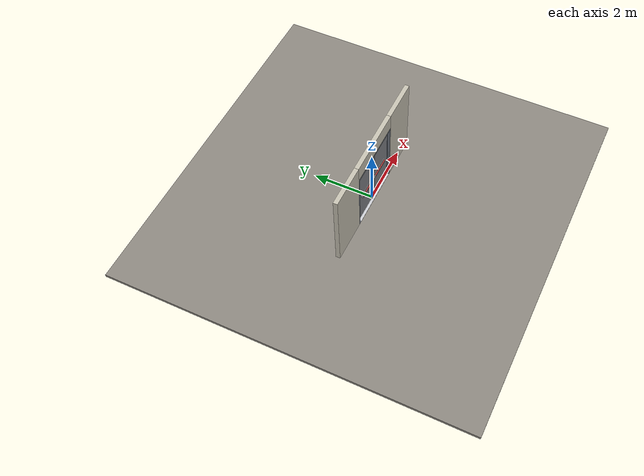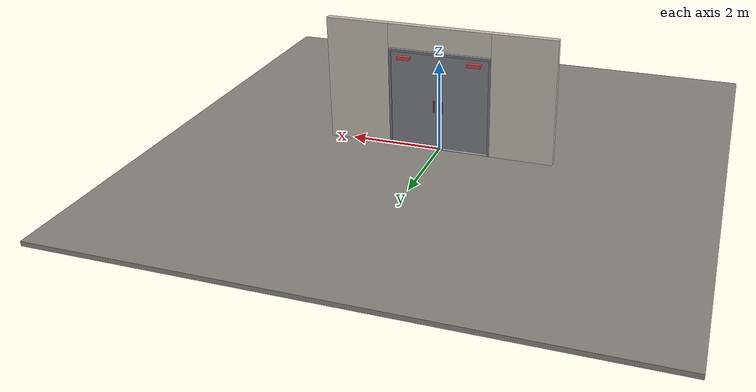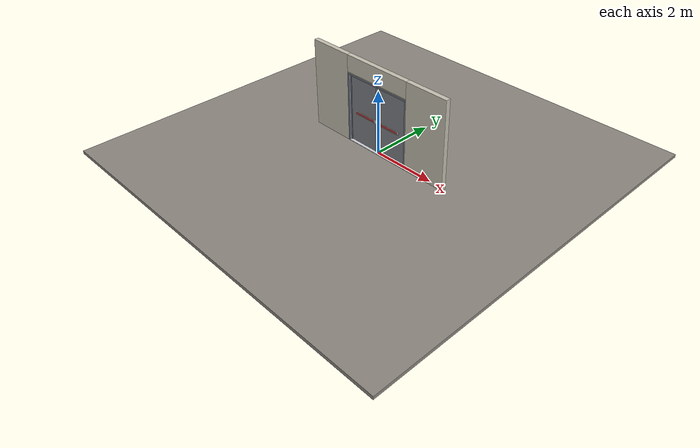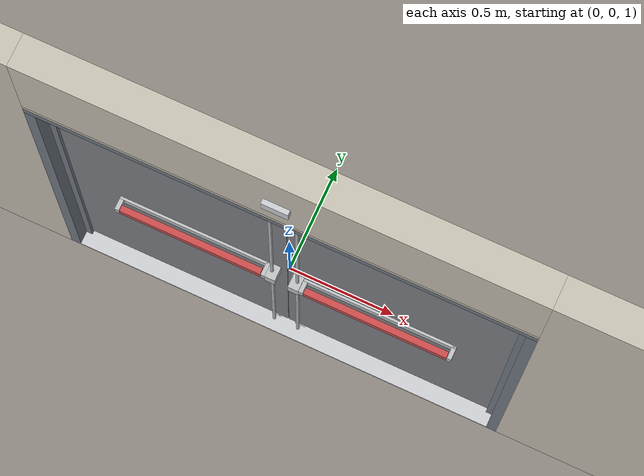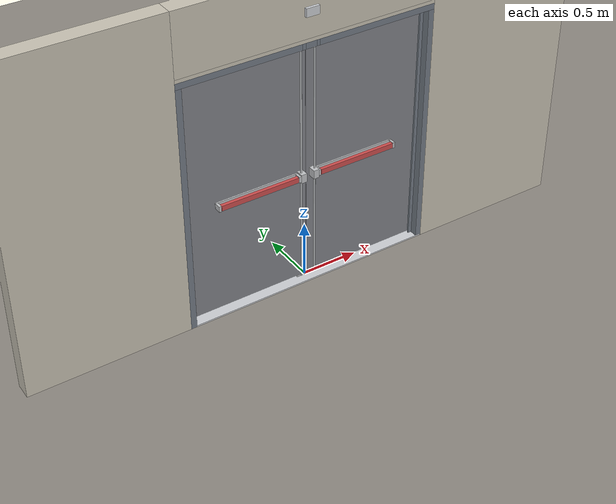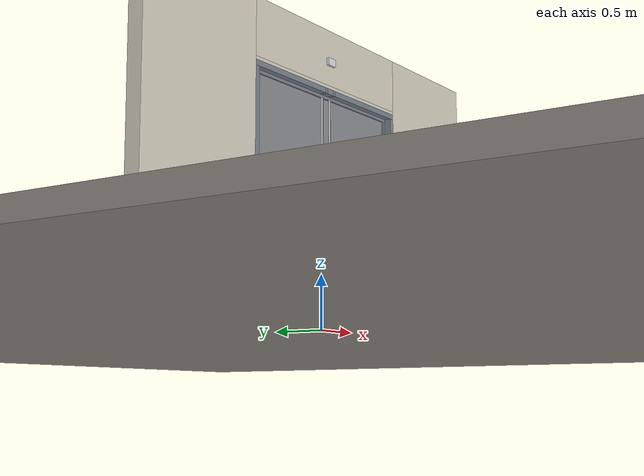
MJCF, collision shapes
<?xml version="1.0" ?>
<mujoco model="db0562_swing_double_full">
  <compiler angle="radian" meshdir="../../hardware" texturedir="../../textures" autolimits="true" inertiafromgeom="false"/>
  <option timestep="0.002" integrator="implicitfast" cone="elliptic" impratio="10" noslip_iterations="3">
    <flag multiccd="enable"/>
  </option>
  <size memory="16M"/>
  <default>
    <geom condim="4" solref="0.005 1" solimp="0.95 0.99 0.001"/>
    <joint solreflimit="0.005 1" solimplimit="0.95 0.99 0.001"/>
    <tendon solreflimit="0.005 1"/>
    <equality solref="0.002 1"/>
  </default>
  <visual>
    <headlight ambient="0.4 0.4 0.4" diffuse="0.7 0.7 0.7" specular="0.2 0.2 0.2"/>
    <quality shadowsize="4096"/>
    <map znear="0.01" zfar="60"/>
  </visual>
  <asset>
    <mesh name="closer_body_fdc4667657" file="closer_body_fdc4667657.obj"/>
    <mesh name="exit_sign_a6449bfa2c" file="exit_sign_a6449bfa2c.obj"/>
    <mesh name="hinge_e22b26c0c1" file="hinge_e22b26c0c1.obj"/>
    <mesh name="hinge_jamb_e1d088f8dc" file="hinge_jamb_e1d088f8dc.obj"/>
    <mesh name="pull_f8d79d6331" file="pull_f8d79d6331.obj"/>
    <mesh name="touchbar_pad_53c3bea3f4" file="touchbar_pad_53c3bea3f4.obj"/>
    <material name="mat_floor" rgba="0.55 0.53 0.5 1" specular="0.2" shininess="0.15" reflectance="0"/>
    <material name="mat_wall" rgba="0.78 0.76 0.7 1" specular="0.2" shininess="0.1" reflectance="0"/>
    <material name="mat_leaf_a" rgba="0.5 0.51 0.53 1" specular="0.23" shininess="0.53" reflectance="0.02"/>
    <material name="mat_hinge" rgba="0.65 0.66 0.68 1" specular="0.74" shininess="0.5" reflectance="0.36"/>
    <material name="mat_op_stainless" rgba="0.75 0.76 0.77 1" specular="0.8" shininess="0.65" reflectance="0.4"/>
    <material name="mat_bolt" rgba="0.75 0.76 0.77 1" specular="0.8" shininess="0.65" reflectance="0.4"/>
    <material name="mat_closer" rgba="0.22 0.17 0.13 1" specular="0.8" shininess="0.6" reflectance="0.4"/>
    <material name="mat_exit_sign" rgba="0.85 0.1 0.1 1" specular="0.2" shininess="0.6" reflectance="0"/>
    <material name="mat_sign_bracket" rgba="0.8 0.81 0.83 1" specular="0.8" shininess="0.6" reflectance="0.4"/>
    <material name="mat_leaf_b" rgba="0.5 0.51 0.53 1" specular="0.23" shininess="0.53" reflectance="0.02"/>
    <material name="mat_frame" rgba="0.45 0.48 0.52 1" specular="0.32" shininess="0.6" reflectance="0.08"/>
    <material name="mat_threshold" rgba="0.8 0.81 0.83 1" specular="0.8" shininess="0.6" reflectance="0.4"/>
    <texture name="skybox" type="skybox" builtin="gradient" rgb1="0.6 0.7 0.85" rgb2="0.9 0.92 0.95" width="256" height="256"/>
  </asset>
  <worldbody>
    <light name="sun" pos="1.5 -2.5 4" dir="-0.3 0.5 -0.8" directional="true" diffuse="0.8 0.8 0.8" specular="0.3 0.3 0.3" castshadow="true"/>
    <light name="fill" pos="-1.5 2.5 3" dir="0.3 -0.5 -0.7" directional="true" diffuse="0.35 0.35 0.4" castshadow="false"/>
    <camera name="robot_view" pos="0 -2.668312 1.812087" xyaxes="1 0 0 0 0.26963 0.962964" fovy="52"/>
    <camera name="far_view" pos="0 2.607312 1.812087" xyaxes="-1 0 0 0 -0.26963 0.962964" fovy="52"/>
    <camera name="iso" pos="-2.004737 -2.246262 2.234138" xyaxes="0.741536 -0.670913 0 0.242917 0.268487 0.932151" fovy="46"/>
    <camera name="detail_handle" pos="0.0885 -0.703 1.296" xyaxes="0.97561 0.219512 0 -0.070934 0.315262 0.94635" fovy="38"/>
    <geom name="floor" type="box" size="6 6 0.05" pos="0 0 -0.05" material="mat_floor" group="0" contype="1" conaffinity="1" friction="0.8 0.005 0.0001" density="2400"/>
    <geom name="wall_left" type="box" size="0.68925 0.0725 1.3735" pos="-1.81075 -0.0305 1.3735" material="mat_wall" group="0" contype="1" conaffinity="1" friction="0.6 0.005 0.0001" density="800"/>
    <geom name="wall_right" type="box" size="0.68925 0.0725 1.3735" pos="1.81075 -0.0305 1.3735" material="mat_wall" group="0" contype="1" conaffinity="1" friction="0.6 0.005 0.0001" density="800"/>
    <geom name="wall_header" type="box" size="1.1215 0.0725 0.26" pos="0 -0.0305 2.487" material="mat_wall" group="0" contype="1" conaffinity="1" friction="0.6 0.005 0.0001" density="800"/>
    <geom name="hinge_0_jamb" type="mesh" mesh="hinge_jamb_e1d088f8dc" pos="-1.0685 0.029 0.279" quat="0 1 0 0" material="mat_hinge" group="1" contype="0" conaffinity="0" density="7850"/>
    <geom name="hinge_1_jamb" type="mesh" mesh="hinge_jamb_e1d088f8dc" pos="-1.0685 0.029 1.086" quat="0 1 0 0" material="mat_hinge" group="1" contype="0" conaffinity="0" density="7850"/>
    <geom name="hinge_2_jamb" type="mesh" mesh="hinge_jamb_e1d088f8dc" pos="-1.0685 0.029 1.963" quat="0 1 0 0" material="mat_hinge" group="1" contype="0" conaffinity="0" density="7850"/>
    <geom name="leaf_a_bottom_strike_plate" type="box" size="0.0255 0.0255 0.00075" pos="-0.0615 0 0.01375" material="mat_bolt" group="0" contype="1" conaffinity="1" friction="0.6 0.005 0.0001" density="7850"/>
    <geom name="leaf_a_bottom_strike_p" type="box" size="0.0215 0.004 0.00575" pos="-0.0615 0.0145 0.02025" material="mat_bolt" group="0" contype="1" conaffinity="1" friction="0.6 0.005 0.0001" density="7850"/>
    <geom name="leaf_a_bottom_strike_n" type="box" size="0.0215 0.004 0.00575" pos="-0.0615 -0.0145 0.02025" material="mat_bolt" group="0" contype="1" conaffinity="1" friction="0.6 0.005 0.0001" density="7850"/>
    <geom name="leaf_a_bottom_strike_e" type="box" size="0.004 0.0215 0.00575" pos="-0.047 0 0.02025" material="mat_bolt" group="0" contype="1" conaffinity="1" friction="0.6 0.005 0.0001" density="7850"/>
    <geom name="exit_sign" type="mesh" mesh="exit_sign_a6449bfa2c" pos="0 -0.15 2.447" material="mat_exit_sign" group="2" contype="0" conaffinity="0" density="500"/>
    <geom name="exit_sign_bracket" type="box" size="0.05775 0.0115 0.035" pos="0 -0.114 2.447" material="mat_sign_bracket" group="2" contype="0" conaffinity="0" density="7850"/>
    <geom name="hinge_0_jamb_2" type="mesh" mesh="hinge_jamb_e1d088f8dc" pos="1.0685 0.029 0.279" quat="0 0 0 1" material="mat_hinge" group="1" contype="0" conaffinity="0" density="7850"/>
    <geom name="hinge_1_jamb_2" type="mesh" mesh="hinge_jamb_e1d088f8dc" pos="1.0685 0.029 1.086" quat="0 0 0 1" material="mat_hinge" group="1" contype="0" conaffinity="0" density="7850"/>
    <geom name="hinge_2_jamb_2" type="mesh" mesh="hinge_jamb_e1d088f8dc" pos="1.0685 0.029 1.963" quat="0 0 0 1" material="mat_hinge" group="1" contype="0" conaffinity="0" density="7850"/>
    <geom name="leaf_b_bottom_strike_plate" type="box" size="0.0255 0.0255 0.00075" pos="0.0615 0 0.01375" material="mat_bolt" group="0" contype="1" conaffinity="1" friction="0.6 0.005 0.0001" density="7850"/>
    <geom name="leaf_b_bottom_strike_p" type="box" size="0.0215 0.004 0.00575" pos="0.0615 0.0145 0.02025" material="mat_bolt" group="0" contype="1" conaffinity="1" friction="0.6 0.005 0.0001" density="7850"/>
    <geom name="leaf_b_bottom_strike_n" type="box" size="0.0215 0.004 0.00575" pos="0.0615 -0.0145 0.02025" material="mat_bolt" group="0" contype="1" conaffinity="1" friction="0.6 0.005 0.0001" density="7850"/>
    <geom name="leaf_b_bottom_strike_e" type="box" size="0.004 0.0215 0.00575" pos="0.047 0 0.02025" material="mat_bolt" group="0" contype="1" conaffinity="1" friction="0.6 0.005 0.0001" density="7850"/>
    <geom name="jamb_l" type="box" size="0.025 0.0725 1.0735" pos="-1.0965 -0.0305 1.0735" material="mat_frame" group="0" contype="1" conaffinity="1" friction="0.6 0.005 0.0001" density="300"/>
    <geom name="jamb_r" type="box" size="0.025 0.0725 1.0735" pos="1.0965 -0.0305 1.0735" material="mat_frame" group="0" contype="1" conaffinity="1" friction="0.6 0.005 0.0001" density="300"/>
    <geom name="jamb_head_pwall_-61_n" type="box" size="0.0135 0.046 0.025" pos="-0.0615 -0.057 2.172" material="mat_frame" group="0" contype="1" conaffinity="1" friction="0.6 0.005 0.0001" density="300"/>
    <geom name="jamb_head_pwall_-61_p" type="box" size="0.0135 0.0155 0.025" pos="-0.0615 0.0265 2.172" material="mat_frame" group="0" contype="1" conaffinity="1" friction="0.6 0.005 0.0001" density="300"/>
    <geom name="jamb_head_pback_-61" type="box" size="0.0135 0.011 0.0135" pos="-0.0615 0 2.1835" material="mat_frame" group="0" contype="1" conaffinity="1" friction="0.6 0.005 0.0001" density="300"/>
    <geom name="jamb_head_pwall_61_n" type="box" size="0.0135 0.046 0.025" pos="0.0615 -0.057 2.172" material="mat_frame" group="0" contype="1" conaffinity="1" friction="0.6 0.005 0.0001" density="300"/>
    <geom name="jamb_head_pwall_61_p" type="box" size="0.0135 0.0155 0.025" pos="0.0615 0.0265 2.172" material="mat_frame" group="0" contype="1" conaffinity="1" friction="0.6 0.005 0.0001" density="300"/>
    <geom name="jamb_head_pback_61" type="box" size="0.0135 0.011 0.0135" pos="0.0615 0 2.1835" material="mat_frame" group="0" contype="1" conaffinity="1" friction="0.6 0.005 0.0001" density="300"/>
    <geom name="jamb_head_0" type="box" size="0.52325 0.0725 0.025" pos="-0.59825 -0.0305 2.172" material="mat_frame" group="0" contype="1" conaffinity="1" friction="0.6 0.005 0.0001" density="300"/>
    <geom name="jamb_head_1" type="box" size="0.048 0.0725 0.025" pos="0 -0.0305 2.172" material="mat_frame" group="0" contype="1" conaffinity="1" friction="0.6 0.005 0.0001" density="300"/>
    <geom name="jamb_head_2" type="box" size="0.52325 0.0725 0.025" pos="0.59825 -0.0305 2.172" material="mat_frame" group="0" contype="1" conaffinity="1" friction="0.6 0.005 0.0001" density="300"/>
    <geom name="head_stud" type="box" size="1.1215 0.0725 0.015" pos="0 -0.0305 2.212" material="mat_wall" group="0" contype="1" conaffinity="1" friction="0.6 0.005 0.0001" density="500"/>
    <geom name="stop_l" type="box" size="0.015 0.008 1.0735" pos="-1.0565 -0.0305 1.0735" material="mat_frame" group="0" contype="1" conaffinity="1" friction="0.6 0.005 0.0001" density="300"/>
    <geom name="stop_r" type="box" size="0.015 0.008 1.0735" pos="1.0565 -0.0305 1.0735" material="mat_frame" group="0" contype="1" conaffinity="1" friction="0.6 0.005 0.0001" density="300"/>
    <geom name="stop_head" type="box" size="1.0715 0.008 0.015" pos="0 -0.0305 2.132" material="mat_frame" group="0" contype="1" conaffinity="1" friction="0.6 0.005 0.0001" density="300"/>
    <geom name="threshold" type="box" size="1.1215 0.0725 0.0065" pos="0 -0.0305 0.0065" material="mat_threshold" group="0" contype="1" conaffinity="1" friction="0.5 0.005 0.0001" density="2700"/>
    <site name="approach_point" pos="0 -1.5 0" quat="1 0 0 0" size="0.05" rgba="0.2 0.9 0.2 0.5" group="4"/>
    <site name="goal_point" pos="0 1.5 0" quat="1 0 0 0" size="0.05" rgba="0.2 0.9 0.2 0.5" group="4"/>
    <site name="door_plane_center" pos="0 0 1.0735" quat="1 0 0 0" size="0.02" rgba="0.2 0.9 0.2 0.5" group="4"/>
    <site name="approach_point_2" pos="0 -1.5 0" quat="1 0 0 0" size="0.05" rgba="0.2 0.9 0.2 0.5" group="4"/>
    <site name="goal_point_2" pos="0 1.5 0" quat="1 0 0 0" size="0.05" rgba="0.2 0.9 0.2 0.5" group="4"/>
    <site name="door_plane_center_2" pos="0 0 1.0735" quat="1 0 0 0" size="0.02" rgba="0.2 0.9 0.2 0.5" group="4"/>
    <site name="approach_point_3" pos="0 -1.5 0" quat="1 0 0 0" size="0.05" rgba="0.2 0.9 0.2 0.5" group="4"/>
    <site name="goal_point_3" pos="0 1.5 0" quat="1 0 0 0" size="0.05" rgba="0.2 0.9 0.2 0.5" group="4"/>
    <site name="door_plane_center_3" pos="0 0 1.0735" quat="1 0 0 0" size="0.02" rgba="0.2 0.9 0.2 0.5" group="4"/>
    <body name="leaf_a" pos="-1.0715 0 0">
      <inertial pos="0.519191 0.011721 1.262735" mass="56.834718" quat="0.528368 0.530526 0.455156 -0.481873" diaginertia="5.346252608 24.480903801 29.706945531"/>
      <joint name="leaf_a_hinge" type="hinge" axis="0 0 1" pos="0.003 0.029 0" limited="true" range="0 1.745329" solreflimit="0.02 1" damping="12.49954" frictionloss="2.529808" stiffness="15.177015" springref="-1.90156" armature="0.02"/>
      <geom name="leaf_a_slab" type="box" size="0.5335 0.022 1.057" pos="0.5365 0 1.086" material="mat_leaf_a" group="0" contype="1" conaffinity="1" friction="0.4 0.005 0.0001" density="1"/>
      <geom name="hinge_0" type="mesh" mesh="hinge_e22b26c0c1" pos="0.003 0.029 0.279" quat="0 1 0 0" material="mat_hinge" group="1" contype="0" conaffinity="0" density="7850"/>
      <geom name="hinge_1" type="mesh" mesh="hinge_e22b26c0c1" pos="0.003 0.029 1.086" quat="0 1 0 0" material="mat_hinge" group="1" contype="0" conaffinity="0" density="7850"/>
      <geom name="hinge_2" type="mesh" mesh="hinge_e22b26c0c1" pos="0.003 0.029 1.963" quat="0 1 0 0" material="mat_hinge" group="1" contype="0" conaffinity="0" density="7850"/>
      <geom name="leaf_a_exit_device_rail" type="box" size="0.366775 0.006 0.025" pos="0.623225 -0.028 1.016" material="mat_op_stainless" group="0" contype="1" conaffinity="1" friction="0.6 0.005 0.0001" density="3000"/>
      <geom name="leaf_a_exit_device_rail_end_n" type="box" size="0.01 0.0325 0.025" pos="0.26645 -0.0545 1.016" material="mat_op_stainless" group="0" contype="1" conaffinity="1" friction="0.6 0.005 0.0001" density="3000"/>
      <geom name="leaf_a_exit_device_rail_end_p" type="box" size="0.01 0.0325 0.025" pos="0.98 -0.0545 1.016" material="mat_op_stainless" group="0" contype="1" conaffinity="1" friction="0.6 0.005 0.0001" density="3000"/>
      <geom name="leaf_a_exit_device_case" type="box" size="0.025 0.034125 0.0375" pos="1.015 -0.056125 1.016" material="mat_op_stainless" group="0" contype="1" conaffinity="1" friction="0.6 0.005 0.0001" density="3000"/>
      <geom name="leaf_a_exit_device_rod_top" type="cylinder" size="0.008 0.52975" pos="1.01 -0.052 1.58325" material="mat_op_stainless" group="1" contype="0" conaffinity="0" density="7850"/>
      <geom name="leaf_a_exit_device_rod_bot" type="cylinder" size="0.008 0.45975" pos="1.01 -0.052 0.51875" material="mat_op_stainless" group="1" contype="0" conaffinity="0" density="7850"/>
      <geom name="leaf_a_far_pull_p" type="mesh" mesh="pull_f8d79d6331" pos="0.98 0.022 1.016" quat="-0.707107 0.707107 0 0" material="mat_op_stainless" group="1" contype="0" conaffinity="0" density="3000"/>
      <geom name="leaf_a_far_pull_col_p" type="capsule" size="0.0125 0.13" pos="0.98 0.097 1.016" material="mat_op_stainless" group="3" contype="1" conaffinity="1" rgba="0.8 0.3 0.3 0.25" friction="0.7 0.01 0.0001" density="3000"/>
      <geom name="closer_body" type="mesh" mesh="closer_body_fdc4667657" pos="0.3 0.022 2.034" quat="-0.707107 0.707107 0 0" material="mat_closer" group="1" contype="0" conaffinity="0" density="2000"/>
      <geom name="closer_body_col" type="box" size="0.145 0.05 0.035" pos="0.3 0.072 2.034" material="mat_closer" group="3" contype="1" conaffinity="1" rgba="0.8 0.3 0.3 0.25" friction="0.6 0.005 0.0001" density="2000"/>
      <site name="leaf_a_far_pull_grip_p" pos="0.98 0.097 1.016" quat="1 0 0 0" size="0.012" rgba="0.2 0.9 0.2 0.5" group="4"/>
      <site name="leaf_a_edge_mid" pos="1.07 0 1.057" quat="1 0 0 0" size="0.02" rgba="0.2 0.9 0.2 0.5" group="4"/>
      <body name="leaf_a_exit_device" pos="0.623225 -0.022 1.016">
        <inertial pos="0 -0.05 0" mass="5.569155" quat="0 0 0.707107 0.707107" diaginertia="0.001357482 0.219807588 0.220329696"/>
        <joint name="leaf_a_exit_device_slide" type="slide" axis="0 1 0" limited="true" range="0 0.016" damping="178.961638" frictionloss="0.5" stiffness="1400" springref="-0.015714" armature="0.15"/>
        <geom name="leaf_a_exit_device_pad" type="mesh" mesh="touchbar_pad_53c3bea3f4" pos="0 0 0" quat="0.707107 0.707107 0 0" material="mat_op_stainless" group="1" contype="0" conaffinity="0" density="3000"/>
        <geom name="leaf_a_exit_device_pad_col" type="box" size="0.343775 0.015 0.0225" pos="0 -0.05 0" material="mat_op_stainless" group="3" contype="1" conaffinity="1" rgba="0.8 0.3 0.3 0.25" friction="0.8 0.01 0.0001" density="3000"/>
        <site name="leaf_a_exit_device_push" pos="0 -0.065 0" quat="1 0 0 0" size="0.015" rgba="0.2 0.9 0.2 0.5" group="4"/>
      </body>
      <body name="leaf_a_top_latch" pos="1.01 0 2.143">
        <inertial pos="0 0 -0.0155" mass="0.151026" quat="0.707107 0 0.707107 0" diaginertia="0.00000654 0.000053442 0.000053442"/>
        <joint name="leaf_a_top_latch_slide" type="slide" axis="0 0 -1" limited="true" range="0 0.019" damping="2" frictionloss="0.3" stiffness="800" springref="-0.01" armature="0.1"/>
        <geom name="leaf_a_top_latch_capsule" type="capsule" size="0.0095 0.025" pos="0 0 -0.0155" material="mat_bolt" group="0" contype="1" conaffinity="1" friction="0.2 0.005 0.0001" density="8500"/>
      </body>
      <body name="leaf_a_bottom_latch" pos="1.01 0 0.03">
        <inertial pos="0 0 0.0185" mass="0.136566" quat="0.707107 0 0.707107 0" diaginertia="0.000005887 0.000040162 0.000040162"/>
        <joint name="leaf_a_bottom_latch_slide" type="slide" axis="0 0 1" limited="true" range="0 0.013" damping="2" frictionloss="0.3" stiffness="800" springref="-0.01" armature="0.1"/>
        <geom name="leaf_a_bottom_latch_capsule" type="capsule" size="0.0095 0.022" pos="0 0 0.0185" material="mat_bolt" group="0" contype="1" conaffinity="1" friction="0.2 0.005 0.0001" density="8500"/>
      </body>
    </body>
    <body name="leaf_b" pos="1.0715 0 0">
      <inertial pos="-0.519191 0.011721 1.262735" mass="56.834718" quat="0.481873 0.455156 0.530526 -0.528368" diaginertia="5.346252608 24.480903801 29.706945531"/>
      <joint name="leaf_b_hinge" type="hinge" axis="0 0 -1" pos="-0.003 0.029 0" limited="true" range="0 1.745329" solreflimit="0.02 1" damping="12.49954" frictionloss="2.529808" stiffness="15.177015" springref="-1.90156" armature="0.02"/>
      <geom name="leaf_b_slab" type="box" size="0.5335 0.022 1.057" pos="-0.5365 0 1.086" material="mat_leaf_b" group="0" contype="1" conaffinity="1" friction="0.4 0.005 0.0001" density="1"/>
      <geom name="hinge_0_2" type="mesh" mesh="hinge_e22b26c0c1" pos="-0.003 0.029 0.279" quat="0 0 0 1" material="mat_hinge" group="1" contype="0" conaffinity="0" density="7850"/>
      <geom name="hinge_1_2" type="mesh" mesh="hinge_e22b26c0c1" pos="-0.003 0.029 1.086" quat="0 0 0 1" material="mat_hinge" group="1" contype="0" conaffinity="0" density="7850"/>
      <geom name="hinge_2_2" type="mesh" mesh="hinge_e22b26c0c1" pos="-0.003 0.029 1.963" quat="0 0 0 1" material="mat_hinge" group="1" contype="0" conaffinity="0" density="7850"/>
      <geom name="leaf_b_exit_device_rail" type="box" size="0.366775 0.006 0.025" pos="-0.623225 -0.028 1.016" material="mat_op_stainless" group="0" contype="1" conaffinity="1" friction="0.6 0.005 0.0001" density="3000"/>
      <geom name="leaf_b_exit_device_rail_end_n" type="box" size="0.01 0.0325 0.025" pos="-0.98 -0.0545 1.016" material="mat_op_stainless" group="0" contype="1" conaffinity="1" friction="0.6 0.005 0.0001" density="3000"/>
      <geom name="leaf_b_exit_device_rail_end_p" type="box" size="0.01 0.0325 0.025" pos="-0.26645 -0.0545 1.016" material="mat_op_stainless" group="0" contype="1" conaffinity="1" friction="0.6 0.005 0.0001" density="3000"/>
      <geom name="leaf_b_exit_device_case" type="box" size="0.025 0.034125 0.0375" pos="-1.015 -0.056125 1.016" material="mat_op_stainless" group="0" contype="1" conaffinity="1" friction="0.6 0.005 0.0001" density="3000"/>
      <geom name="leaf_b_exit_device_rod_top" type="cylinder" size="0.008 0.52975" pos="-1.01 -0.052 1.58325" material="mat_op_stainless" group="1" contype="0" conaffinity="0" density="7850"/>
      <geom name="leaf_b_exit_device_rod_bot" type="cylinder" size="0.008 0.45975" pos="-1.01 -0.052 0.51875" material="mat_op_stainless" group="1" contype="0" conaffinity="0" density="7850"/>
      <geom name="leaf_b_far_pull_p" type="mesh" mesh="pull_f8d79d6331" pos="-0.98 0.022 1.016" quat="0 0 0.707107 0.707107" material="mat_op_stainless" group="1" contype="0" conaffinity="0" density="3000"/>
      <geom name="leaf_b_far_pull_col_p" type="capsule" size="0.0125 0.13" pos="-0.98 0.097 1.016" material="mat_op_stainless" group="3" contype="1" conaffinity="1" rgba="0.8 0.3 0.3 0.25" friction="0.7 0.01 0.0001" density="3000"/>
      <geom name="closer_body_2" type="mesh" mesh="closer_body_fdc4667657" pos="-0.3 0.022 2.034" quat="0 0 0.707107 0.707107" material="mat_closer" group="1" contype="0" conaffinity="0" density="2000"/>
      <geom name="closer_body_col_2" type="box" size="0.145 0.05 0.035" pos="-0.3 0.072 2.034" material="mat_closer" group="3" contype="1" conaffinity="1" rgba="0.8 0.3 0.3 0.25" friction="0.6 0.005 0.0001" density="2000"/>
      <site name="leaf_b_far_pull_grip_p" pos="-0.98 0.097 1.016" quat="1 0 0 0" size="0.012" rgba="0.2 0.9 0.2 0.5" group="4"/>
      <site name="leaf_b_edge_mid" pos="-1.07 0 1.057" quat="1 0 0 0" size="0.02" rgba="0.2 0.9 0.2 0.5" group="4"/>
      <body name="leaf_b_exit_device" pos="-0.623225 -0.022 1.016">
        <inertial pos="0 -0.05 0" mass="5.569155" quat="0.707107 0.707107 0 0" diaginertia="0.001357482 0.219807588 0.220329696"/>
        <joint name="leaf_b_exit_device_slide" type="slide" axis="0 1 0" limited="true" range="0 0.016" damping="178.961638" frictionloss="0.5" stiffness="1400" springref="-0.015714" armature="0.15"/>
        <geom name="leaf_b_exit_device_pad" type="mesh" mesh="touchbar_pad_53c3bea3f4" pos="0 0 0" quat="0 0 -0.707107 0.707107" material="mat_op_stainless" group="1" contype="0" conaffinity="0" density="3000"/>
        <geom name="leaf_b_exit_device_pad_col" type="box" size="0.343775 0.015 0.0225" pos="0 -0.05 0" material="mat_op_stainless" group="3" contype="1" conaffinity="1" rgba="0.8 0.3 0.3 0.25" friction="0.8 0.01 0.0001" density="3000"/>
        <site name="leaf_b_exit_device_push" pos="0 -0.065 0" quat="1 0 0 0" size="0.015" rgba="0.2 0.9 0.2 0.5" group="4"/>
      </body>
      <body name="leaf_b_top_latch" pos="-1.01 0 2.143">
        <inertial pos="0 0 -0.0155" mass="0.151026" quat="0.707107 0 0.707107 0" diaginertia="0.00000654 0.000053442 0.000053442"/>
        <joint name="leaf_b_top_latch_slide" type="slide" axis="0 0 -1" limited="true" range="0 0.019" damping="2" frictionloss="0.3" stiffness="800" springref="-0.01" armature="0.1"/>
        <geom name="leaf_b_top_latch_capsule" type="capsule" size="0.0095 0.025" pos="0 0 -0.0155" material="mat_bolt" group="0" contype="1" conaffinity="1" friction="0.2 0.005 0.0001" density="8500"/>
      </body>
      <body name="leaf_b_bottom_latch" pos="-1.01 0 0.03">
        <inertial pos="0 0 0.0185" mass="0.136566" quat="0.707107 0 0.707107 0" diaginertia="0.000005887 0.000040162 0.000040162"/>
        <joint name="leaf_b_bottom_latch_slide" type="slide" axis="0 0 1" limited="true" range="0 0.013" damping="2" frictionloss="0.3" stiffness="800" springref="-0.01" armature="0.1"/>
        <geom name="leaf_b_bottom_latch_capsule" type="capsule" size="0.0095 0.022" pos="0 0 0.0185" material="mat_bolt" group="0" contype="1" conaffinity="1" friction="0.2 0.005 0.0001" density="8500"/>
      </body>
    </body>
  </worldbody>
  <tendon>
    <fixed name="leaf_a_top_latch_coupling" limited="true" range="0 10">
      <joint joint="leaf_a_top_latch_slide" coef="1"/>
      <joint joint="leaf_a_exit_device_slide" coef="-1.142857"/>
    </fixed>
    <fixed name="leaf_a_bottom_latch_coupling" limited="true" range="0 10">
      <joint joint="leaf_a_bottom_latch_slide" coef="1"/>
      <joint joint="leaf_a_exit_device_slide" coef="-0.781955"/>
    </fixed>
    <fixed name="leaf_b_top_latch_coupling" limited="true" range="0 10">
      <joint joint="leaf_b_top_latch_slide" coef="1"/>
      <joint joint="leaf_b_exit_device_slide" coef="-1.142857"/>
    </fixed>
    <fixed name="leaf_b_bottom_latch_coupling" limited="true" range="0 10">
      <joint joint="leaf_b_bottom_latch_slide" coef="1"/>
      <joint joint="leaf_b_exit_device_slide" coef="-0.781955"/>
    </fixed>
  </tendon>
  <sensor>
    <jointpos name="leaf_a_hinge_pos" joint="leaf_a_hinge"/>
    <jointvel name="leaf_a_hinge_vel" joint="leaf_a_hinge"/>
    <jointpos name="leaf_a_exit_device_slide_pos" joint="leaf_a_exit_device_slide"/>
    <jointvel name="leaf_a_exit_device_slide_vel" joint="leaf_a_exit_device_slide"/>
    <jointpos name="leaf_a_top_latch_slide_pos" joint="leaf_a_top_latch_slide"/>
    <jointvel name="leaf_a_top_latch_slide_vel" joint="leaf_a_top_latch_slide"/>
    <jointpos name="leaf_a_bottom_latch_slide_pos" joint="leaf_a_bottom_latch_slide"/>
    <jointvel name="leaf_a_bottom_latch_slide_vel" joint="leaf_a_bottom_latch_slide"/>
    <jointpos name="leaf_b_hinge_pos" joint="leaf_b_hinge"/>
    <jointvel name="leaf_b_hinge_vel" joint="leaf_b_hinge"/>
    <jointpos name="leaf_b_exit_device_slide_pos" joint="leaf_b_exit_device_slide"/>
    <jointvel name="leaf_b_exit_device_slide_vel" joint="leaf_b_exit_device_slide"/>
    <jointpos name="leaf_b_top_latch_slide_pos" joint="leaf_b_top_latch_slide"/>
    <jointvel name="leaf_b_top_latch_slide_vel" joint="leaf_b_top_latch_slide"/>
    <jointpos name="leaf_b_bottom_latch_slide_pos" joint="leaf_b_bottom_latch_slide"/>
    <jointvel name="leaf_b_bottom_latch_slide_vel" joint="leaf_b_bottom_latch_slide"/>
  </sensor>
</mujoco>
